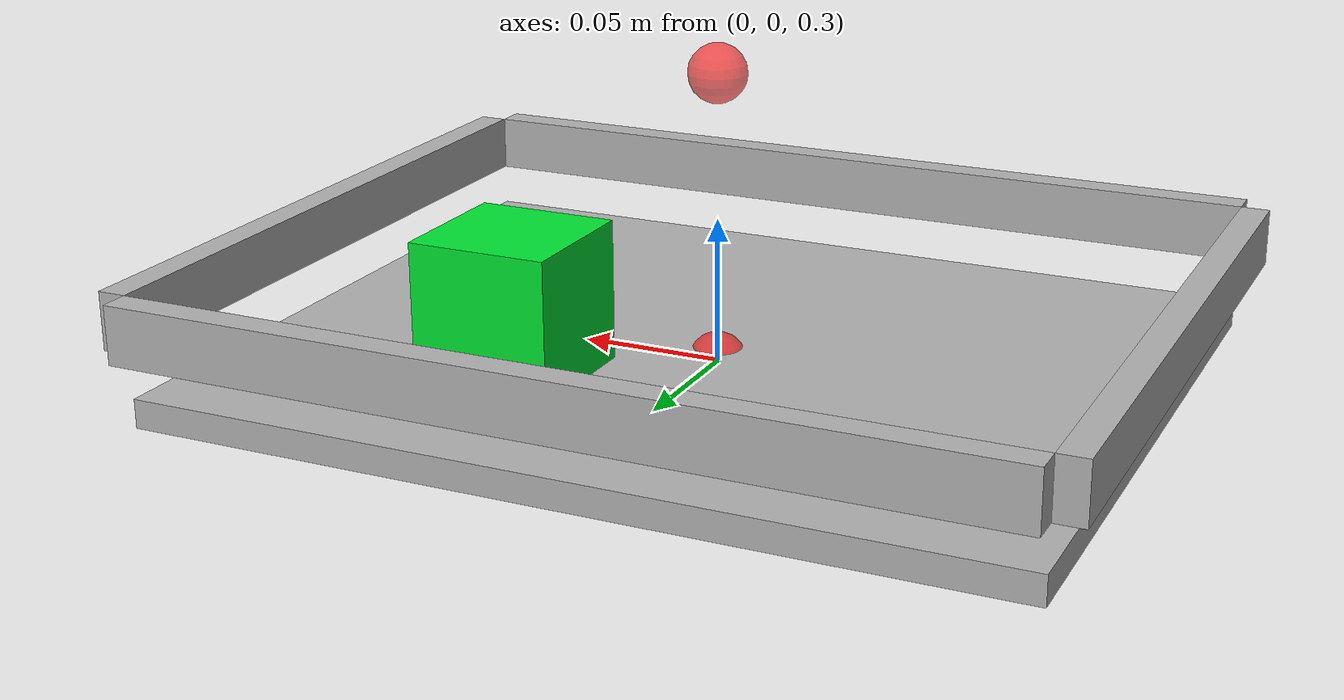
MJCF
<mujoco model="free_tray_and_cube">
	<!-- Basic compiler and simulation options -->
	<compiler angle="degree" coordinate="local" inertiafromgeom="true" meshdir="./" texturedir="./" />
	<option timestep="0.002" gravity="0 0 -9.81" integrator="implicitfast" noslip_iterations="100" />
	<size njmax="200" nconmax="200" />

	<!-- Defaults for geoms and joints -->
	<default>
		<geom rgba="0.7 0.7 0.7 1" friction="0.1 0.1 0.001" solref="0.002 1"
			solimp="0.9 0.95 0.001" contype="1" conaffinity="1" />
		<joint type="free" damping="0" limited="false" />
	</default>

	<asset>
		<texture type="skybox" builtin="gradient" rgb1="0.3 0.5 0.7" rgb2="0 0 0" width="512"
			height="3072" />
		<texture type="2d" name="groundplane" builtin="checker" mark="edge" rgb1="0.2 0.3 0.4"
			rgb2="0.1 0.2 0.3"
			markrgb="0.8 0.8 0.8" width="300" height="300" />
		<material name="groundplane" texture="groundplane" texuniform="true" texrepeat="5 5"
			reflectance="0.2" specular="0.2" shininess="0.1" />
	</asset>

	<visual>
		<headlight diffuse="0.6 0.6 0.6" ambient="0.6 0.6 0.6" specular="0 0 0.6" />
		<rgba haze="0.15 0.25 0.35 1" />
		<global azimuth="120" elevation="-20" />
	</visual>

	<asset>
		<material name="mat_tray" rgba="0.55 0.55 0.6 1" reflectance="0.0" specular="0.4"
			shininess="0.6" />
		<material name="mat_cube" rgba="0.0 0.9 0.2 1" reflectance="0.0" specular="0.5"
			shininess="0.7" />
	</asset>

	<worldbody>
		<!-- Lighting and ground plane -->
		<light pos="0 0 1.5" dir="0 0 -1" directional="true" />
		<geom name="floor" type="plane" size="5 5 0.1" material="groundplane" contype="1"
			conaffinity="1" />

		<!-- Free-moving tray body -->
		<body name="tray" pos="0 0 0.3">
			<freejoint name="tray_free" />
			<geom name="tray_bottom" type="box" size="0.15 0.12 0.005" pos="0 0 0"
				material="mat_tray" density="6" />
			<geom name="tray_wall_ypos" type="box" size="0.15 0.005 0.01" pos="0 0.125 0.03"
				material="mat_tray" density="6" />
			<geom name="tray_wall_yneg" type="box" size="0.15 0.005 0.01" pos="0 -0.125 0.03"
				material="mat_tray" density="6" />
			<geom name="tray_wall_xpos" type="box" size="0.005 0.12 0.01" pos="0.155 0 0.03"
				material="mat_tray" density="6" />
			<geom name="tray_wall_xneg" type="box" size="0.005 0.12 0.01" pos="-0.155 0 0.03"
				material="mat_tray" density="6" />
		</body>

		<!-- Mocap body -->
		<body name="mocap_marker" mocap="true" pos="0 0 0.3">
			<geom type="sphere" size="0.01" rgba="1 0 0 0.6" contype="0" conaffinity="0"/>
		</body>

		<body name="test_mocap_marker" mocap="true" pos="0 0 0.4">
			<geom type="sphere" size="0.01" rgba="1 0 0 0.6" contype="0" conaffinity="0"/>
		</body>

		<!-- Free-moving cube body -->
		<body name="cube" pos="0.05 0.05 0.33">
			<freejoint name="cube_free" />
			<geom name="cube_geom" type="box" size="0.024 0.024 0.024" material="mat_cube"
				density="10" rgba="0.0 0.9 0.2 1" conaffinity="0" />
		</body>
	</worldbody>

	<!-- Equality constraint to weld tray and mocap -->
	<equality>
		<weld body1="tray" body2="mocap_marker" relpose="0 0 0 1 0 0 0"/>
	</equality>

	<keyframe>
	</keyframe>

	<actuator>
		<position joint="tray_free" kp="1" />
	</actuator>
</mujoco>
